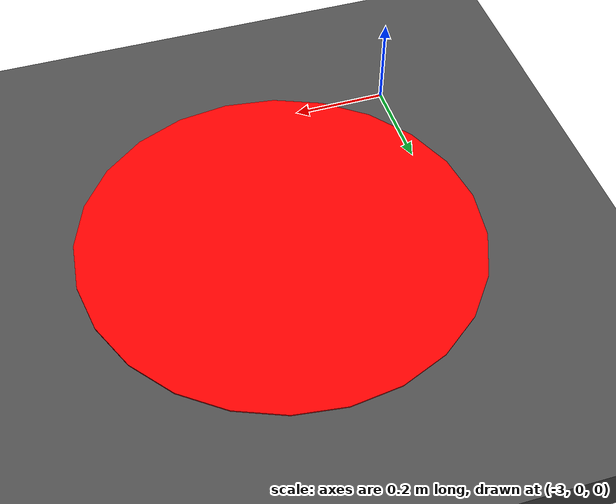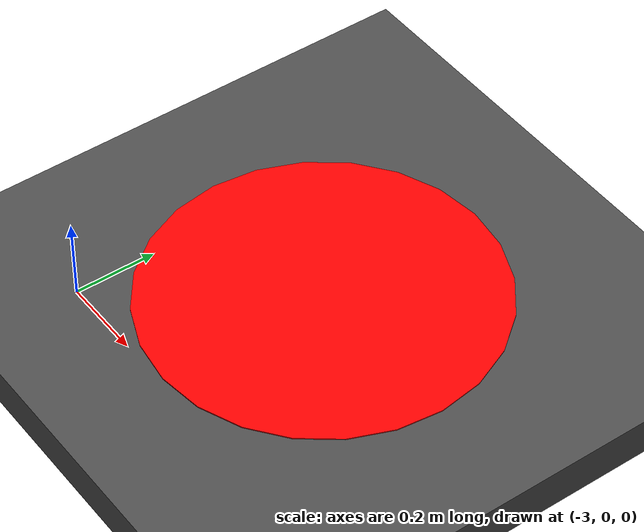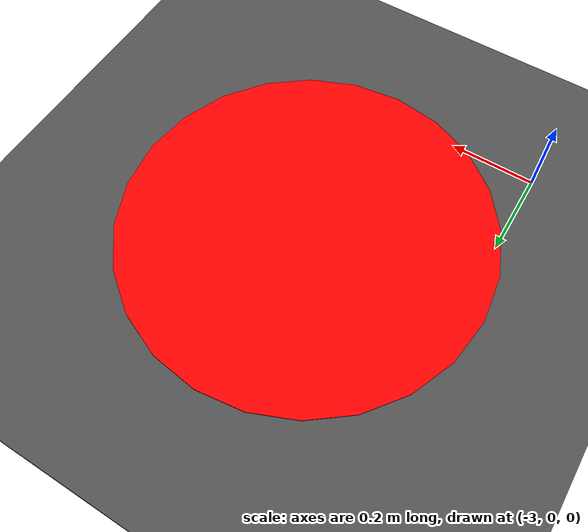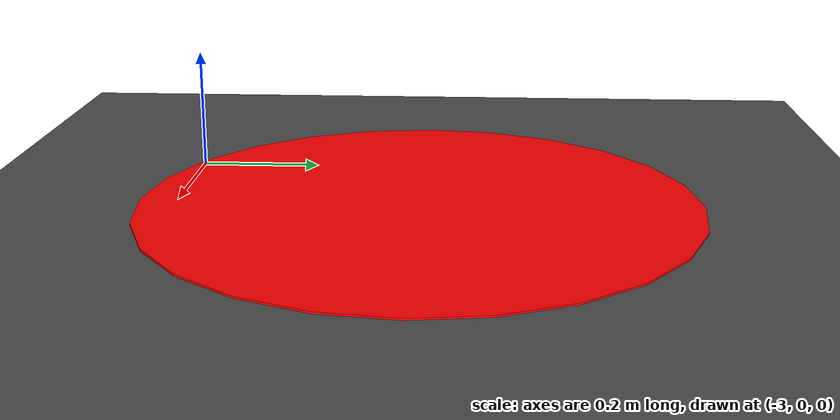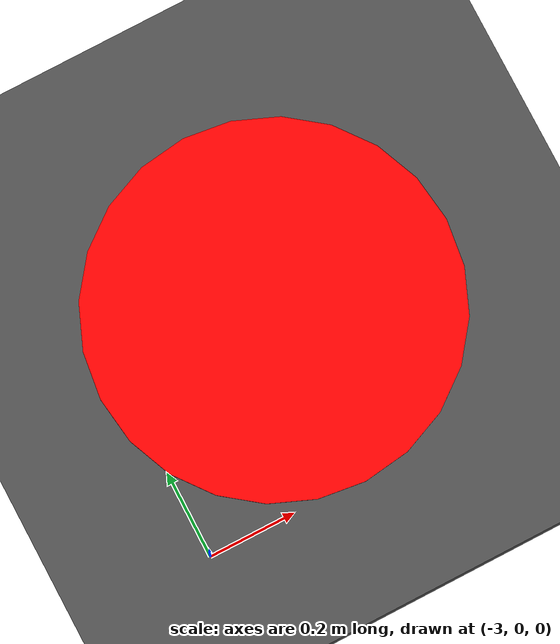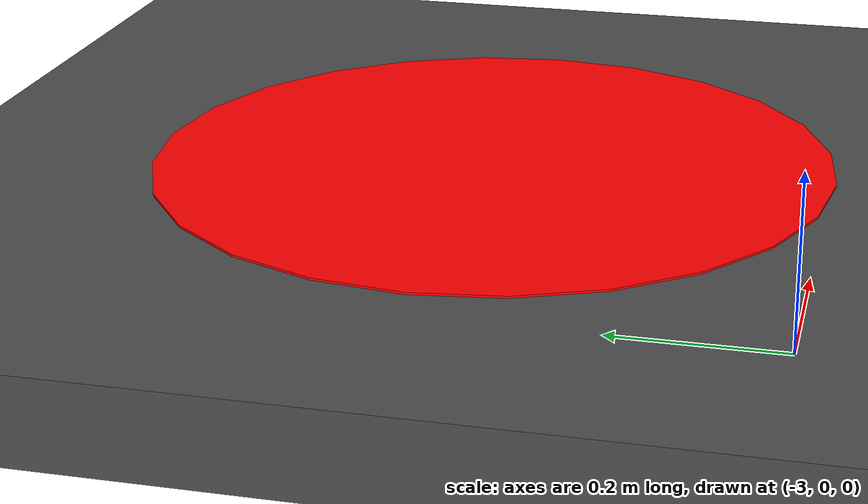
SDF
<sdf version="1.7">
 <world name="default">
  <light name="sun" type="directional">
   <pose>0 0 10 0 -0 0</pose>
   <diffuse>0.8 0.8 0.8 1</diffuse>
   <specular>0.2 0.2 0.2 1</specular>
   <attenuation>
    <range>1000</range>
    <constant>0.9</constant>
    <linear>0.01</linear>
    <quadratic>0.001</quadratic>
   </attenuation>
   <direction>-0.5 0.1 -0.9</direction>
   <spot><inner_angle>0</inner_angle><outer_angle>0</outer_angle><falloff>0</falloff></spot>
  </light>
  <model name="ground_plane">
   <static>1</static>
   <link name="link">
    <collision name="collision">
     <geometry><plane><normal>0 0 1</normal><size>100 100</size></plane></geometry>
     <surface>
      <contact><collide_bitmask>65535</collide_bitmask></contact>
      <friction><ode><mu>100</mu><mu2>50</mu2></ode></friction>
     </surface>
    </collision>
    <visual name="visual">
     <cast_shadows>0</cast_shadows>
     <geometry><plane><normal>0 0 1</normal><size>100 100</size></plane></geometry>
     <material>
      <script><uri>file://media/materials/scripts/gazebo.material</uri><name>Gazebo/Grey</name></script>
     </material>
    </visual>
   </link>
  </model>
  <model name="asphalt_plane">
   <pose>-3.89496 2.50286 0 0 -0 0</pose>
   <static>1</static>
   <link name="link">
    <collision name="collision"><geometry><box><size>73.9002 69.3136 0.1</size></box></geometry></collision>
    <visual name="visual">
     <cast_shadows>0</cast_shadows>
     <geometry><box><size>73.9002 69.3136 0.1</size></box></geometry>
     <material>
      <script>
       <uri>model://asphalt_plane/materials/scripts</uri>
       <uri>model://asphalt_plane/materials/textures</uri>
       <name>vrc/asphalt</name>
      </script>
     </material>
    </visual>
   </link>
  </model>
  <physics name="default_physics" default="0" type="ode">
   <ode>
    <solver>
     <type>quick</type>
     <iters>10</iters>
     <sor>1.3</sor>
     <use_dynamic_moi_rescaling>0</use_dynamic_moi_rescaling>
    </solver>
    <constraints>
     <cfm>0</cfm>
     <erp>0.2</erp>
     <contact_max_correcting_vel>100</contact_max_correcting_vel>
     <contact_surface_layer>0.001</contact_surface_layer>
    </constraints>
   </ode>
   <max_step_size>0.004</max_step_size>
   <real_time_factor>1</real_time_factor>
   <real_time_update_rate>250</real_time_update_rate>
  </physics>
  <gravity>0 0 -9.8066</gravity>
  <magnetic_field>6e-06 2.3e-05 -4.2e-05</magnetic_field>
  <atmosphere type="adiabatic"/>
  <scene><ambient>0.4 0.4 0.4 1</ambient><background>0.7 0.7 0.7 1</background><shadows>1</shadows></scene>
  <audio><device>default</device></audio>
  <spherical_coordinates>
   <surface_model>EARTH_WGS84</surface_model>
   <latitude_deg>0</latitude_deg>
   <longitude_deg>0</longitude_deg>
   <elevation>0</elevation>
   <heading_deg>0</heading_deg>
  </spherical_coordinates>
  <model name="unit_cylinder">
   <link name="link">
    <gravity>0</gravity>
    <visual name="visual">
     <geometry><cylinder><radius>0.414602</radius><length>0.00264553</length></cylinder></geometry>
     <material>
      <script><name>Gazebo/Grey</name><uri>file://media/materials/scripts/gazebo.material</uri></script>
      <shader type="pixel"><normal_map>__default__</normal_map></shader>
      <ambient>1 0 0 0</ambient>
      <diffuse>1 0 0 1</diffuse>
      <specular>1 0 0 1</specular>
      <emissive>0 0 0 1</emissive>
     </material>
    </visual>
    <collision name="collision">
     <geometry><cylinder><radius>0.414602</radius><length>0.002646</length></cylinder></geometry>
     <surface>
      <friction>
       <ode><mu>1</mu><mu2>1</mu2><fdir1>0 0 0</fdir1><slip1>0</slip1><slip2>0</slip2></ode>
       <torsional>
        <coefficient>1</coefficient>
        <patch_radius>0</patch_radius>
        <surface_radius>0</surface_radius>
        <use_patch_radius>1</use_patch_radius>
        <ode><slip>0</slip></ode>
       </torsional>
      </friction>
      <bounce><restitution_coefficient>0</restitution_coefficient><threshold>1e+06</threshold></bounce>
      <contact>
       <collide_without_contact>0</collide_without_contact>
       <collide_without_contact_bitmask>1</collide_without_contact_bitmask>
       <collide_bitmask>1</collide_bitmask>
       <ode>
        <soft_cfm>0</soft_cfm>
        <soft_erp>0.2</soft_erp>
        <kp>1e+13</kp>
        <kd>1</kd>
        <max_vel>0.01</max_vel>
        <min_depth>0</min_depth>
       </ode>
       <bullet>
        <split_impulse>1</split_impulse>
        <split_impulse_penetration_threshold>-0.01</split_impulse_penetration_threshold>
        <soft_cfm>0</soft_cfm>
        <soft_erp>0.2</soft_erp>
        <kp>1e+13</kp>
        <kd>1</kd>
       </bullet>
      </contact>
     </surface>
    </collision>
   </link>
   <static>1</static>
   <pose>-2.63964 0.39964 0.051384 -4.2e-05 5.2e-05 0.003541</pose>
   <plugin name="object_mover_plugin" filename="libmove_plugin.so">
    <radius>5.0</radius>
    <angularVelocity>0.5</angularVelocity>
   </plugin>
  </model>
 </world>
</sdf>
